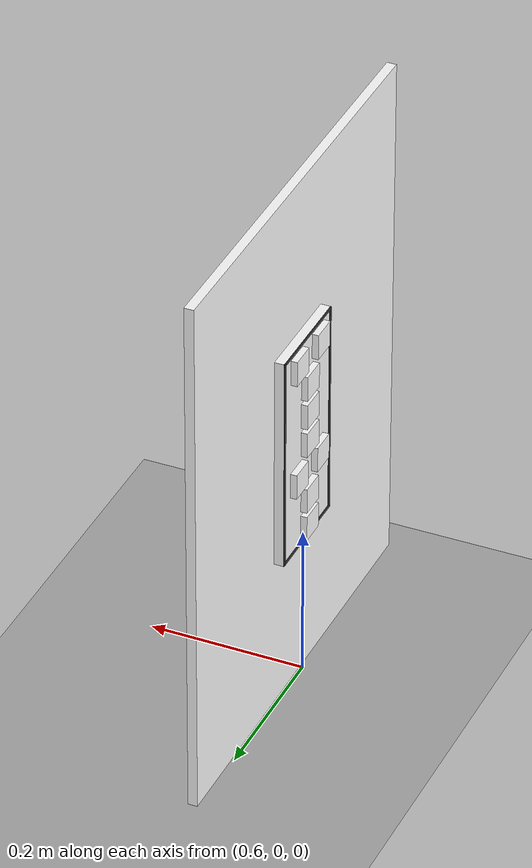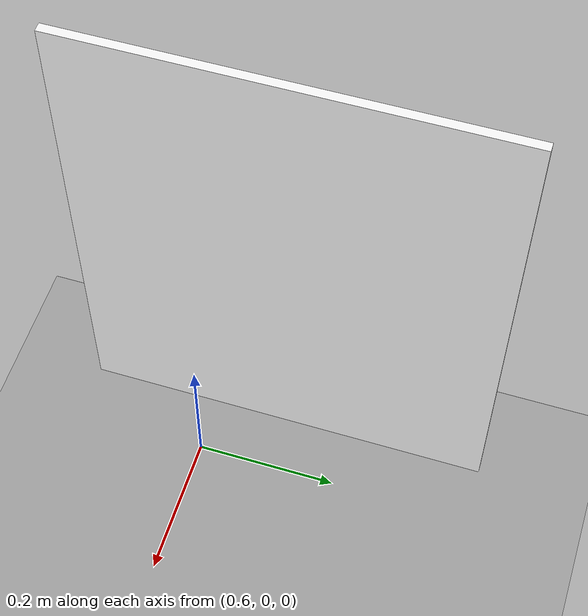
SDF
<?xml version="1.0"?>
<sdf version="1.8">
  <world name="button_press">
    <physics name="1ms" type="ignored">
      <max_step_size>0.001</max_step_size>
      <real_time_factor>1.0</real_time_factor>
    </physics>

    <plugin
      filename="ignition-gazebo-physics-system"
      name="ignition::gazebo::systems::Physics"/>
    <plugin
      filename="ignition-gazebo-user-commands-system"
      name="ignition::gazebo::systems::UserCommands"/>
    <plugin
      filename="ignition-gazebo-scene-broadcaster-system"
      name="ignition::gazebo::systems::SceneBroadcaster"/>
    <plugin
      filename="ignition-gazebo-sensors-system"
      name="ignition::gazebo::systems::Sensors">
      <render_engine>ogre2</render_engine>
    </plugin>
    <plugin
      filename="ignition-gazebo-contact-system"
      name="ignition::gazebo::systems::Contact"/>

    <light name="key_light" type="directional">
      <pose>0 0 3 0 0 0</pose>
      <cast_shadows>true</cast_shadows>
      <intensity>1.0</intensity>
      <direction>-0.5 0 -1</direction>
      <diffuse>0.95 0.95 0.95 1</diffuse>
      <specular>0.2 0.2 0.2 1</specular>
    </light>
    <light name="fill_light" type="point">
      <pose>0.3 -0.5 0.8 0 0 0</pose>
      <intensity>0.7</intensity>
      <diffuse>0.8 0.85 1.0 1</diffuse>
      <attenuation>
        <range>5</range>
        <constant>0.5</constant>
        <linear>0.1</linear>
        <quadratic>0.01</quadratic>
      </attenuation>
    </light>

    <model name="ground_plane">
      <static>true</static>
      <link name="ground_link">
        <collision name="ground_collision">
          <geometry><plane><normal>0 0 1</normal><size>5 5</size></plane></geometry>
        </collision>
        <visual name="ground_visual">
          <geometry><plane><normal>0 0 1</normal><size>5 5</size></plane></geometry>
          <material>
            <ambient>0.55 0.55 0.55 1</ambient>
            <diffuse>0.65 0.65 0.65 1</diffuse>
          </material>
        </visual>
      </link>
    </model>

    <include>
      <uri>model://elevator_button</uri>
      <name>elevator_button</name>
      <!-- Keep even the right-hand close tile off the arm's y=0 symmetry
           line; at y≈0 its near-panel Jacobian crosses Servo's hard stop. -->
      <pose>0.55 0.12 0.43 0 0 3.14159265359</pose>
    </include>

    <include>
      <uri>model://cabin_wall</uri>
      <name>cabin_wall</name>
      <!-- 大理石墙紧贴面板背面：面板背面在 x = 0.556，12 mm 厚的板占
           0.556..0.568。纯视觉，不参与碰撞，避免挡住机械臂和相机。 -->
      <pose>0.562 0.12 0.43 0 0 3.14159265359</pose>
    </include>
  </world>
</sdf>

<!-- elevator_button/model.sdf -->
<sdf version="1.8">
  <model name="elevator_button">
    <static>false</static>
    <self_collide>false</self_collide>

    <link name="wall_panel">
      <inertial>
        <mass>2.0</mass>
        <inertia>
          <ixx>0.015918</ixx>
          <iyy>0.013091</iyy>
          <izz>0.002876</izz>
        </inertia>
      </inertial>
      <visual name="panel_visual">
        <geometry><box><size>0.012 0.1308 0.280</size></box></geometry>
        <material>
          <ambient>1 1 1 1</ambient>
          <diffuse>1 1 1 1</diffuse>
          <specular>0.30 0.30 0.30 1</specular>
          <pbr><metal><albedo_map>model://elevator_button/textures/panel_steel.png</albedo_map><metalness>0.12</metalness><roughness>0.28</roughness></metal></pbr>
        </material>
      </visual>

      <!-- Machined rim: the photo shows a narrow dark frame around the plate,
           slightly thicker at the top and bottom rails. -->
      <visual name="panel_rim_top">
        <pose>0.0066 0 0.1383 0 0 0</pose>
        <geometry><box><size>0.0012 0.1308 0.0034</size></box></geometry>
        <material>
          <ambient>0.18 0.18 0.19 1</ambient>
          <diffuse>0.24 0.24 0.25 1</diffuse>
          <specular>0.18 0.18 0.18 1</specular>
          <pbr><metal><metalness>0.35</metalness><roughness>0.40</roughness></metal></pbr>
        </material>
      </visual>
      <visual name="panel_rim_bottom">
        <pose>0.0066 0 -0.1383 0 0 0</pose>
        <geometry><box><size>0.0012 0.1308 0.0034</size></box></geometry>
        <material>
          <ambient>0.18 0.18 0.19 1</ambient>
          <diffuse>0.24 0.24 0.25 1</diffuse>
          <specular>0.18 0.18 0.18 1</specular>
          <pbr><metal><metalness>0.35</metalness><roughness>0.40</roughness></metal></pbr>
        </material>
      </visual>
      <visual name="panel_rim_left">
        <pose>0.0066 -0.0637 0 0 0 0</pose>
        <geometry><box><size>0.0012 0.0034 0.280</size></box></geometry>
        <material>
          <ambient>0.18 0.18 0.19 1</ambient>
          <diffuse>0.24 0.24 0.25 1</diffuse>
          <specular>0.18 0.18 0.18 1</specular>
          <pbr><metal><metalness>0.35</metalness><roughness>0.40</roughness></metal></pbr>
        </material>
      </visual>
      <visual name="panel_rim_right">
        <pose>0.0066 0.0637 0 0 0 0</pose>
        <geometry><box><size>0.0012 0.0034 0.280</size></box></geometry>
        <material>
          <ambient>0.18 0.18 0.19 1</ambient>
          <diffuse>0.24 0.24 0.25 1</diffuse>
          <specular>0.18 0.18 0.18 1</specular>
          <pbr><metal><metalness>0.35</metalness><roughness>0.40</roughness></metal></pbr>
        </material>
      </visual>

      <collision name="panel_rib_top">
        <pose>0 0 0.137 0 0 0</pose>
        <geometry><box><size>0.012 0.1308 0.006</size></box></geometry>
      </collision>
      <collision name="panel_rib_a">
        <pose>0 0 0.0975 0 0 0</pose>
        <geometry><box><size>0.012 0.1308 0.005</size></box></geometry>
      </collision>
      <collision name="panel_rib_b">
        <pose>0 0 0.0585 0 0 0</pose>
        <geometry><box><size>0.012 0.1308 0.005</size></box></geometry>
      </collision>
      <collision name="panel_rib_c">
        <pose>0 0 0.0195 0 0 0</pose>
        <geometry><box><size>0.012 0.1308 0.005</size></box></geometry>
      </collision>
      <collision name="panel_rib_d">
        <pose>0 0 -0.0195 0 0 0</pose>
        <geometry><box><size>0.012 0.1308 0.005</size></box></geometry>
      </collision>
      <collision name="panel_rib_e">
        <pose>0 0 -0.0585 0 0 0</pose>
        <geometry><box><size>0.012 0.1308 0.005</size></box></geometry>
      </collision>
      <collision name="panel_rib_f">
        <pose>0 0 -0.0975 0 0 0</pose>
        <geometry><box><size>0.012 0.1308 0.005</size></box></geometry>
      </collision>
      <collision name="panel_rib_bottom">
        <pose>0 0 -0.137 0 0 0</pose>
        <geometry><box><size>0.012 0.1308 0.006</size></box></geometry>
      </collision>
    </link>

    <joint name="panel_world_joint" type="fixed">
      <parent>world</parent>
      <child>wall_panel</child>
    </joint>

    <!-- Every control is a real 4 mm spring-loaded link. -->
    <link name="button_alarm_face">
      <pose relative_to="wall_panel">0.010 -0.0298 0.117 0 0 0</pose>
      <inertial><mass>0.03</mass><inertia><ixx>0.00000545</ixx><iyy>0.00000288</iyy><izz>0.00000288</izz></inertia></inertial>
      <visual name="button_alarm_face">
        <geometry><box><size>0.008 0.033 0.033</size></box></geometry>
        <material>
          <ambient>1 1 1 1</ambient><diffuse>1 1 1 1</diffuse>
          <pbr><metal><albedo_map>model://elevator_button/textures/button_alarm.png</albedo_map><metalness>0.08</metalness><roughness>0.30</roughness></metal></pbr>
        </material>
      </visual>
      <collision name="button_alarm_face_collision"><geometry><box><size>0.008 0.033 0.033</size></box></geometry><surface><friction><ode><mu>0.8</mu><mu2>0.8</mu2></ode></friction></surface></collision>
      <sensor name="button_alarm_contact" type="contact"><always_on>true</always_on><update_rate>200</update_rate><contact><collision>button_alarm_face_collision</collision></contact></sensor>
    </link>
    <joint name="button_alarm_press_joint" type="prismatic">
      <parent>wall_panel</parent><child>button_alarm_face</child>
      <axis><xyz>1 0 0</xyz><limit><lower>-0.004</lower><upper>0.0</upper></limit><dynamics><damping>0.50</damping><spring_reference>0.0</spring_reference><spring_stiffness>50.0</spring_stiffness></dynamics></axis>
    </joint>

    <link name="button_intercom_face">
      <pose relative_to="wall_panel">0.010 0.0298 0.117 0 0 0</pose>
      <inertial><mass>0.03</mass><inertia><ixx>0.00000545</ixx><iyy>0.00000288</iyy><izz>0.00000288</izz></inertia></inertial>
      <visual name="button_intercom_face">
        <geometry><box><size>0.008 0.033 0.033</size></box></geometry>
        <material>
          <ambient>1 1 1 1</ambient><diffuse>1 1 1 1</diffuse>
          <pbr><metal><albedo_map>model://elevator_button/textures/button_intercom.png</albedo_map><metalness>0.08</metalness><roughness>0.30</roughness></metal></pbr>
        </material>
      </visual>
      <collision name="button_intercom_face_collision"><geometry><box><size>0.008 0.033 0.033</size></box></geometry><surface><friction><ode><mu>0.8</mu><mu2>0.8</mu2></ode></friction></surface></collision>
      <sensor name="button_intercom_contact" type="contact"><always_on>true</always_on><update_rate>200</update_rate><contact><collision>button_intercom_face_collision</collision></contact></sensor>
    </link>
    <joint name="button_intercom_press_joint" type="prismatic">
      <parent>wall_panel</parent><child>button_intercom_face</child>
      <axis><xyz>1 0 0</xyz><limit><lower>-0.004</lower><upper>0.0</upper></limit><dynamics><damping>0.50</damping><spring_reference>0.0</spring_reference><spring_stiffness>50.0</spring_stiffness></dynamics></axis>
    </joint>

    <link name="button_3_face">
      <pose relative_to="wall_panel">0.010 0 0.078 0 0 0</pose>
      <inertial><mass>0.03</mass><inertia><ixx>0.00000545</ixx><iyy>0.00000288</iyy><izz>0.00000288</izz></inertia></inertial>
      <visual name="button_3_face">
        <geometry><box><size>0.008 0.033 0.033</size></box></geometry>
        <material>
          <ambient>1 1 1 1</ambient><diffuse>1 1 1 1</diffuse>
          <pbr><metal><albedo_map>model://elevator_button/textures/button_3.png</albedo_map><metalness>0.08</metalness><roughness>0.30</roughness></metal></pbr>
        </material>
      </visual>
      <collision name="button_3_face_collision"><geometry><box><size>0.008 0.033 0.033</size></box></geometry><surface><friction><ode><mu>0.8</mu><mu2>0.8</mu2></ode></friction></surface></collision>
      <sensor name="button_3_contact" type="contact"><always_on>true</always_on><update_rate>200</update_rate><contact><collision>button_3_face_collision</collision></contact></sensor>
    </link>
    <joint name="button_3_press_joint" type="prismatic">
      <parent>wall_panel</parent><child>button_3_face</child>
      <axis><xyz>1 0 0</xyz><limit><lower>-0.004</lower><upper>0.0</upper></limit><dynamics><damping>0.50</damping><spring_reference>0.0</spring_reference><spring_stiffness>50.0</spring_stiffness></dynamics></axis>
    </joint>

    <link name="button_2_face">
      <pose relative_to="wall_panel">0.010 0 0.039 0 0 0</pose>
      <inertial><mass>0.03</mass><inertia><ixx>0.00000545</ixx><iyy>0.00000288</iyy><izz>0.00000288</izz></inertia></inertial>
      <visual name="button_2_face">
        <geometry><box><size>0.008 0.033 0.033</size></box></geometry>
        <material>
          <ambient>1 1 1 1</ambient><diffuse>1 1 1 1</diffuse>
          <pbr><metal><albedo_map>model://elevator_button/textures/button_2.png</albedo_map><metalness>0.08</metalness><roughness>0.30</roughness></metal></pbr>
        </material>
      </visual>
      <collision name="button_2_face_collision"><geometry><box><size>0.008 0.033 0.033</size></box></geometry><surface><friction><ode><mu>0.8</mu><mu2>0.8</mu2></ode></friction></surface></collision>
      <sensor name="button_2_contact" type="contact"><always_on>true</always_on><update_rate>200</update_rate><contact><collision>button_2_face_collision</collision></contact></sensor>
    </link>
    <joint name="button_2_press_joint" type="prismatic">
      <parent>wall_panel</parent><child>button_2_face</child>
      <axis><xyz>1 0 0</xyz><limit><lower>-0.004</lower><upper>0.0</upper></limit><dynamics><damping>0.50</damping><spring_reference>0.0</spring_reference><spring_stiffness>50.0</spring_stiffness></dynamics></axis>
    </joint>

    <link name="button_1_face">
      <pose relative_to="wall_panel">0.010 0 0.0 0 0 0</pose>
      <inertial><mass>0.03</mass><inertia><ixx>0.00000545</ixx><iyy>0.00000288</iyy><izz>0.00000288</izz></inertia></inertial>
      <visual name="button_1_face">
        <geometry><box><size>0.008 0.033 0.033</size></box></geometry>
        <material>
          <ambient>1 1 1 1</ambient><diffuse>1 1 1 1</diffuse>
          <pbr><metal><albedo_map>model://elevator_button/textures/button_1.png</albedo_map><metalness>0.08</metalness><roughness>0.30</roughness></metal></pbr>
        </material>
      </visual>
      <collision name="button_1_face_collision"><geometry><box><size>0.008 0.033 0.033</size></box></geometry><surface><friction><ode><mu>0.8</mu><mu2>0.8</mu2></ode></friction></surface></collision>
      <sensor name="button_1_contact" type="contact"><always_on>true</always_on><update_rate>200</update_rate><contact><collision>button_1_face_collision</collision></contact></sensor>
    </link>
    <joint name="button_1_press_joint" type="prismatic">
      <parent>wall_panel</parent><child>button_1_face</child>
      <axis><xyz>1 0 0</xyz><limit><lower>-0.004</lower><upper>0.0</upper></limit><dynamics><damping>0.50</damping><spring_reference>0.0</spring_reference><spring_stiffness>50.0</spring_stiffness></dynamics></axis>
    </joint>

    <link name="button_open_face">
      <pose relative_to="wall_panel">0.010 -0.0298 -0.039 0 0 0</pose>
      <inertial><mass>0.03</mass><inertia><ixx>0.00000545</ixx><iyy>0.00000288</iyy><izz>0.00000288</izz></inertia></inertial>
      <visual name="button_open_face">
        <geometry><box><size>0.008 0.033 0.033</size></box></geometry>
        <material>
          <ambient>1 1 1 1</ambient><diffuse>1 1 1 1</diffuse>
          <pbr><metal><albedo_map>model://elevator_button/textures/button_open.png</albedo_map><metalness>0.08</metalness><roughness>0.30</roughness></metal></pbr>
        </material>
      </visual>
      <collision name="button_open_face_collision"><geometry><box><size>0.008 0.033 0.033</size></box></geometry><surface><friction><ode><mu>0.8</mu><mu2>0.8</mu2></ode></friction></surface></collision>
      <sensor name="button_open_contact" type="contact"><always_on>true</always_on><update_rate>200</update_rate><contact><collision>button_open_face_collision</collision></contact></sensor>
    </link>
    <joint name="button_open_press_joint" type="prismatic">
      <parent>wall_panel</parent><child>button_open_face</child>
      <axis><xyz>1 0 0</xyz><limit><lower>-0.004</lower><upper>0.0</upper></limit><dynamics><damping>0.50</damping><spring_reference>0.0</spring_reference><spring_stiffness>50.0</spring_stiffness></dynamics></axis>
    </joint>

    <link name="button_close_face">
      <pose relative_to="wall_panel">0.010 0.0298 -0.039 0 0 0</pose>
      <inertial><mass>0.03</mass><inertia><ixx>0.00000545</ixx><iyy>0.00000288</iyy><izz>0.00000288</izz></inertia></inertial>
      <visual name="button_close_face">
        <geometry><box><size>0.008 0.033 0.033</size></box></geometry>
        <material>
          <ambient>1 1 1 1</ambient><diffuse>1 1 1 1</diffuse>
          <pbr><metal><albedo_map>model://elevator_button/textures/button_close.png</albedo_map><metalness>0.08</metalness><roughness>0.30</roughness></metal></pbr>
        </material>
      </visual>
      <collision name="button_close_face_collision"><geometry><box><size>0.008 0.033 0.033</size></box></geometry><surface><friction><ode><mu>0.8</mu><mu2>0.8</mu2></ode></friction></surface></collision>
      <sensor name="button_close_contact" type="contact"><always_on>true</always_on><update_rate>200</update_rate><contact><collision>button_close_face_collision</collision></contact></sensor>
    </link>
    <joint name="button_close_press_joint" type="prismatic">
      <parent>wall_panel</parent><child>button_close_face</child>
      <axis><xyz>1 0 0</xyz><limit><lower>-0.004</lower><upper>0.0</upper></limit><dynamics><damping>0.50</damping><spring_reference>0.0</spring_reference><spring_stiffness>50.0</spring_stiffness></dynamics></axis>
    </joint>

    <link name="button_up_face">
      <pose relative_to="wall_panel">0.010 0 -0.078 0 0 0</pose>
      <inertial><mass>0.03</mass><inertia><ixx>0.00000545</ixx><iyy>0.00000288</iyy><izz>0.00000288</izz></inertia></inertial>
      <visual name="button_up_face">
        <geometry><box><size>0.008 0.033 0.033</size></box></geometry>
        <material>
          <ambient>1 1 1 1</ambient><diffuse>1 1 1 1</diffuse>
          <pbr><metal><albedo_map>model://elevator_button/textures/button_up.png</albedo_map><metalness>0.08</metalness><roughness>0.30</roughness></metal></pbr>
        </material>
      </visual>
      <collision name="button_up_face_collision"><geometry><box><size>0.008 0.033 0.033</size></box></geometry><surface><friction><ode><mu>0.8</mu><mu2>0.8</mu2></ode></friction></surface></collision>
      <sensor name="button_up_contact" type="contact"><always_on>true</always_on><update_rate>200</update_rate><contact><collision>button_up_face_collision</collision></contact></sensor>
    </link>
    <joint name="button_up_press_joint" type="prismatic">
      <parent>wall_panel</parent><child>button_up_face</child>
      <axis><xyz>1 0 0</xyz><limit><lower>-0.004</lower><upper>0.0</upper></limit><dynamics><damping>0.50</damping><spring_reference>0.0</spring_reference><spring_stiffness>50.0</spring_stiffness></dynamics></axis>
    </joint>

    <link name="button_down_face">
      <pose relative_to="wall_panel">0.010 0 -0.117 0 0 0</pose>
      <inertial><mass>0.03</mass><inertia><ixx>0.00000545</ixx><iyy>0.00000288</iyy><izz>0.00000288</izz></inertia></inertial>
      <visual name="button_down_face">
        <geometry><box><size>0.008 0.033 0.033</size></box></geometry>
        <material>
          <ambient>1 1 1 1</ambient><diffuse>1 1 1 1</diffuse>
          <pbr><metal><albedo_map>model://elevator_button/textures/button_down.png</albedo_map><metalness>0.08</metalness><roughness>0.30</roughness></metal></pbr>
        </material>
      </visual>
      <collision name="button_down_face_collision"><geometry><box><size>0.008 0.033 0.033</size></box></geometry><surface><friction><ode><mu>0.8</mu><mu2>0.8</mu2></ode></friction></surface></collision>
      <sensor name="button_down_contact" type="contact"><always_on>true</always_on><update_rate>200</update_rate><contact><collision>button_down_face_collision</collision></contact></sensor>
    </link>
    <joint name="button_down_press_joint" type="prismatic">
      <parent>wall_panel</parent><child>button_down_face</child>
      <axis><xyz>1 0 0</xyz><limit><lower>-0.004</lower><upper>0.0</upper></limit><dynamics><damping>0.50</damping><spring_reference>0.0</spring_reference><spring_stiffness>50.0</spring_stiffness></dynamics></axis>
    </joint>

    <plugin filename="ignition-gazebo-touchplugin-system" name="gz::sim::systems::TouchPlugin">
      <target>piper_pika</target>
      <namespace>elevator_button</namespace>
      <time>0.02</time>
      <enabled>true</enabled>
    </plugin>
    <plugin filename="ignition-gazebo-joint-state-publisher-system" name="ignition::gazebo::systems::JointStatePublisher">
      <joint_name>button_alarm_press_joint</joint_name>
      <joint_name>button_intercom_press_joint</joint_name>
      <joint_name>button_3_press_joint</joint_name>
      <joint_name>button_2_press_joint</joint_name>
      <joint_name>button_1_press_joint</joint_name>
      <joint_name>button_open_press_joint</joint_name>
      <joint_name>button_close_press_joint</joint_name>
      <joint_name>button_up_press_joint</joint_name>
      <joint_name>button_down_press_joint</joint_name>
      <topic>/elevator_button/joint_state</topic>
      <update_rate>100</update_rate>
    </plugin>
  </model>
</sdf>

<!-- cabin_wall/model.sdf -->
<sdf version="1.8">
  <model name="cabin_wall">
    <static>true</static>
    <link name="wall_link">
      <visual name="wall_visual">
        <geometry><box><size>0.012 0.560 0.680</size></box></geometry>
        <material>
          <ambient>1 1 1 1</ambient>
          <diffuse>1 1 1 1</diffuse>
          <specular>0.14 0.14 0.14 1</specular>
          <pbr><metal><albedo_map>model://cabin_wall/textures/wall_marble.png</albedo_map><metalness>0.05</metalness><roughness>0.35</roughness></metal></pbr>
        </material>
      </visual>
    </link>
  </model>
</sdf>
